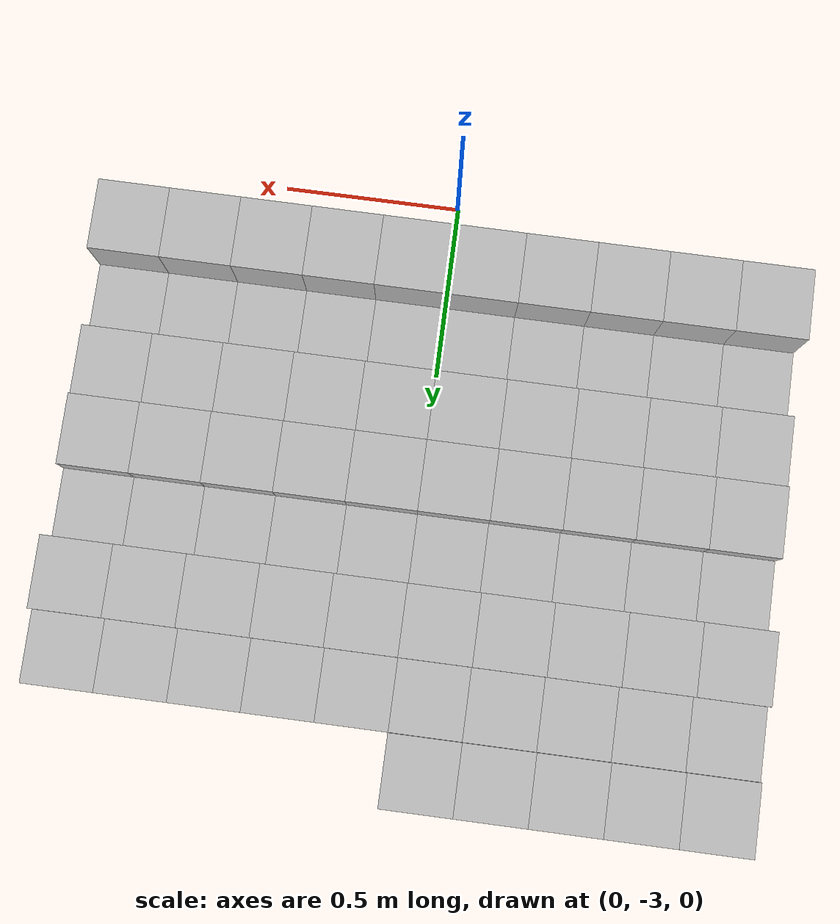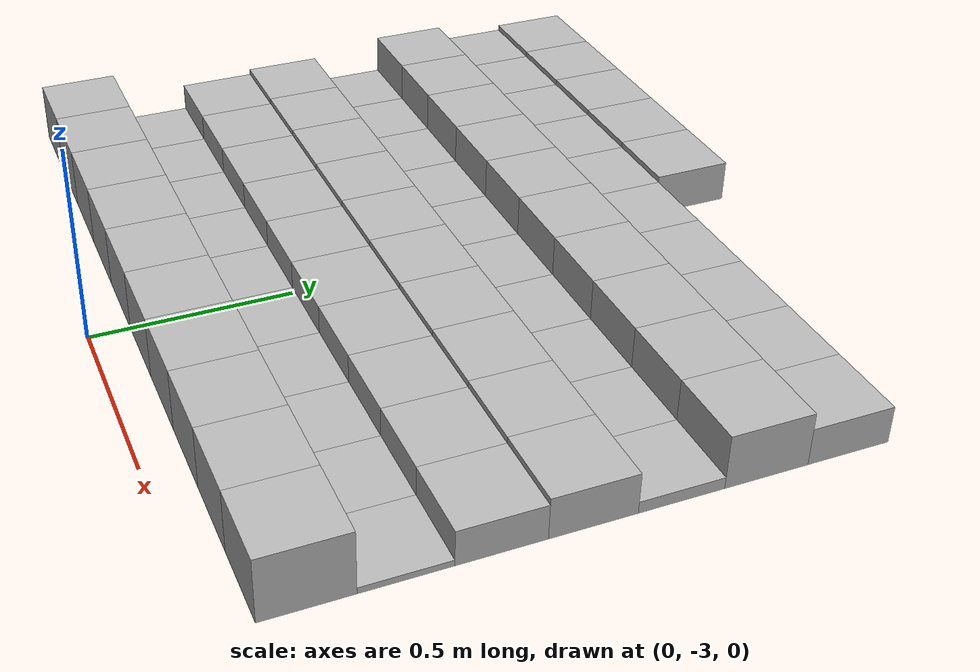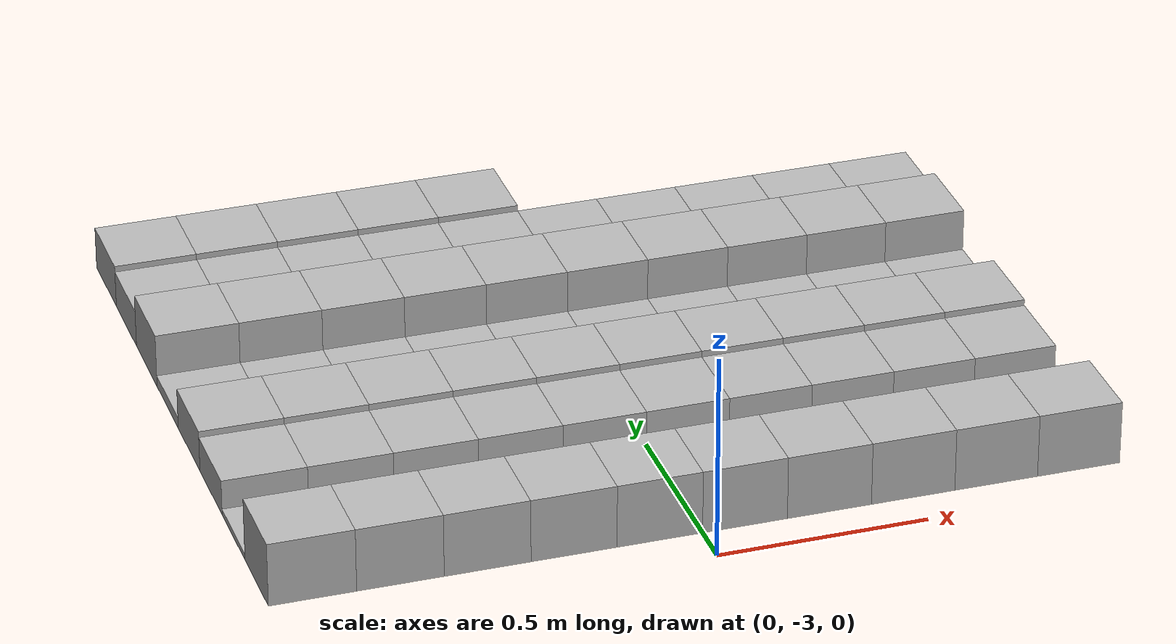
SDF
<sdf version="1.6">
 <model name="Terrain">
  <static>true</static>
  <link name="box_7_0">
   <pose>-0.9 -1.4 0.0542363194159 0 0 0</pose>
   <inertial>
    <mass>1.0</mass>
    <inertia><ixx>0.0</ixx><ixy>0.0</ixy><ixz>0.0</ixz><iyy>0.0</iyy><iyz>0.0</iyz><izz>0.0</izz></inertia>
   </inertial>
   <collision name="collision"><geometry><box><size>0.2 0.2 0.108472638832</size></box></geometry></collision>
   <visual name="visual"><geometry><box><size>0.2 0.2 0.108472638832</size></box></geometry></visual>
  </link>
  <link name="box_7_1">
   <pose>-0.7 -1.4 0.0542363194159 0 0 0</pose>
   <inertial>
    <mass>1.0</mass>
    <inertia><ixx>0.0</ixx><ixy>0.0</ixy><ixz>0.0</ixz><iyy>0.0</iyy><iyz>0.0</iyz><izz>0.0</izz></inertia>
   </inertial>
   <collision name="collision"><geometry><box><size>0.2 0.2 0.108472638832</size></box></geometry></collision>
   <visual name="visual"><geometry><box><size>0.2 0.2 0.108472638832</size></box></geometry></visual>
  </link>
  <link name="box_7_2">
   <pose>-0.5 -1.4 0.0542363194159 0 0 0</pose>
   <inertial>
    <mass>1.0</mass>
    <inertia><ixx>0.0</ixx><ixy>0.0</ixy><ixz>0.0</ixz><iyy>0.0</iyy><iyz>0.0</iyz><izz>0.0</izz></inertia>
   </inertial>
   <collision name="collision"><geometry><box><size>0.2 0.2 0.108472638832</size></box></geometry></collision>
   <visual name="visual"><geometry><box><size>0.2 0.2 0.108472638832</size></box></geometry></visual>
  </link>
  <link name="box_7_3">
   <pose>-0.3 -1.4 0.0542363194159 0 0 0</pose>
   <inertial>
    <mass>1.0</mass>
    <inertia><ixx>0.0</ixx><ixy>0.0</ixy><ixz>0.0</ixz><iyy>0.0</iyy><iyz>0.0</iyz><izz>0.0</izz></inertia>
   </inertial>
   <collision name="collision"><geometry><box><size>0.2 0.2 0.108472638832</size></box></geometry></collision>
   <visual name="visual"><geometry><box><size>0.2 0.2 0.108472638832</size></box></geometry></visual>
  </link>
  <link name="box_7_4">
   <pose>-0.1 -1.4 0.0542363194159 0 0 0</pose>
   <inertial>
    <mass>1.0</mass>
    <inertia><ixx>0.0</ixx><ixy>0.0</ixy><ixz>0.0</ixz><iyy>0.0</iyy><iyz>0.0</iyz><izz>0.0</izz></inertia>
   </inertial>
   <collision name="collision"><geometry><box><size>0.2 0.2 0.108472638832</size></box></geometry></collision>
   <visual name="visual"><geometry><box><size>0.2 0.2 0.108472638832</size></box></geometry></visual>
  </link>
  <link name="box_8_0">
   <pose>-0.9 -1.6 0.0467953595649 0 0 0</pose>
   <inertial>
    <mass>1.0</mass>
    <inertia><ixx>0.0</ixx><ixy>0.0</ixy><ixz>0.0</ixz><iyy>0.0</iyy><iyz>0.0</iyz><izz>0.0</izz></inertia>
   </inertial>
   <collision name="collision"><geometry><box><size>0.2 0.2 0.0935907191298</size></box></geometry></collision>
   <visual name="visual"><geometry><box><size>0.2 0.2 0.0935907191298</size></box></geometry></visual>
  </link>
  <link name="box_8_1">
   <pose>-0.7 -1.6 0.0467953595649 0 0 0</pose>
   <inertial>
    <mass>1.0</mass>
    <inertia><ixx>0.0</ixx><ixy>0.0</ixy><ixz>0.0</ixz><iyy>0.0</iyy><iyz>0.0</iyz><izz>0.0</izz></inertia>
   </inertial>
   <collision name="collision"><geometry><box><size>0.2 0.2 0.0935907191298</size></box></geometry></collision>
   <visual name="visual"><geometry><box><size>0.2 0.2 0.0935907191298</size></box></geometry></visual>
  </link>
  <link name="box_8_2">
   <pose>-0.5 -1.6 0.0467953595649 0 0 0</pose>
   <inertial>
    <mass>1.0</mass>
    <inertia><ixx>0.0</ixx><ixy>0.0</ixy><ixz>0.0</ixz><iyy>0.0</iyy><iyz>0.0</iyz><izz>0.0</izz></inertia>
   </inertial>
   <collision name="collision"><geometry><box><size>0.2 0.2 0.0935907191298</size></box></geometry></collision>
   <visual name="visual"><geometry><box><size>0.2 0.2 0.0935907191298</size></box></geometry></visual>
  </link>
  <link name="box_8_3">
   <pose>-0.3 -1.6 0.0467953595649 0 0 0</pose>
   <inertial>
    <mass>1.0</mass>
    <inertia><ixx>0.0</ixx><ixy>0.0</ixy><ixz>0.0</ixz><iyy>0.0</iyy><iyz>0.0</iyz><izz>0.0</izz></inertia>
   </inertial>
   <collision name="collision"><geometry><box><size>0.2 0.2 0.0935907191298</size></box></geometry></collision>
   <visual name="visual"><geometry><box><size>0.2 0.2 0.0935907191298</size></box></geometry></visual>
  </link>
  <link name="box_8_4">
   <pose>-0.1 -1.6 0.0467953595649 0 0 0</pose>
   <inertial>
    <mass>1.0</mass>
    <inertia><ixx>0.0</ixx><ixy>0.0</ixy><ixz>0.0</ixz><iyy>0.0</iyy><iyz>0.0</iyz><izz>0.0</izz></inertia>
   </inertial>
   <collision name="collision"><geometry><box><size>0.2 0.2 0.0935907191298</size></box></geometry></collision>
   <visual name="visual"><geometry><box><size>0.2 0.2 0.0935907191298</size></box></geometry></visual>
  </link>
  <link name="box_8_5">
   <pose>0.1 -1.6 0.0467953595649 0 0 0</pose>
   <inertial>
    <mass>1.0</mass>
    <inertia><ixx>0.0</ixx><ixy>0.0</ixy><ixz>0.0</ixz><iyy>0.0</iyy><iyz>0.0</iyz><izz>0.0</izz></inertia>
   </inertial>
   <collision name="collision"><geometry><box><size>0.2 0.2 0.0935907191298</size></box></geometry></collision>
   <visual name="visual"><geometry><box><size>0.2 0.2 0.0935907191298</size></box></geometry></visual>
  </link>
  <link name="box_8_6">
   <pose>0.3 -1.6 0.0467953595649 0 0 0</pose>
   <inertial>
    <mass>1.0</mass>
    <inertia><ixx>0.0</ixx><ixy>0.0</ixy><ixz>0.0</ixz><iyy>0.0</iyy><iyz>0.0</iyz><izz>0.0</izz></inertia>
   </inertial>
   <collision name="collision"><geometry><box><size>0.2 0.2 0.0935907191298</size></box></geometry></collision>
   <visual name="visual"><geometry><box><size>0.2 0.2 0.0935907191298</size></box></geometry></visual>
  </link>
  <link name="box_8_7">
   <pose>0.5 -1.6 0.0467953595649 0 0 0</pose>
   <inertial>
    <mass>1.0</mass>
    <inertia><ixx>0.0</ixx><ixy>0.0</ixy><ixz>0.0</ixz><iyy>0.0</iyy><iyz>0.0</iyz><izz>0.0</izz></inertia>
   </inertial>
   <collision name="collision"><geometry><box><size>0.2 0.2 0.0935907191298</size></box></geometry></collision>
   <visual name="visual"><geometry><box><size>0.2 0.2 0.0935907191298</size></box></geometry></visual>
  </link>
  <link name="box_8_8">
   <pose>0.7 -1.6 0.0467953595649 0 0 0</pose>
   <inertial>
    <mass>1.0</mass>
    <inertia><ixx>0.0</ixx><ixy>0.0</ixy><ixz>0.0</ixz><iyy>0.0</iyy><iyz>0.0</iyz><izz>0.0</izz></inertia>
   </inertial>
   <collision name="collision"><geometry><box><size>0.2 0.2 0.0935907191298</size></box></geometry></collision>
   <visual name="visual"><geometry><box><size>0.2 0.2 0.0935907191298</size></box></geometry></visual>
  </link>
  <link name="box_8_9">
   <pose>0.9 -1.6 0.0467953595649 0 0 0</pose>
   <inertial>
    <mass>1.0</mass>
    <inertia><ixx>0.0</ixx><ixy>0.0</ixy><ixz>0.0</ixz><iyy>0.0</iyy><iyz>0.0</iyz><izz>0.0</izz></inertia>
   </inertial>
   <collision name="collision"><geometry><box><size>0.2 0.2 0.0935907191298</size></box></geometry></collision>
   <visual name="visual"><geometry><box><size>0.2 0.2 0.0935907191298</size></box></geometry></visual>
  </link>
  <link name="box_9_0">
   <pose>-0.9 -1.8 0.0676945440921 0 0 0</pose>
   <inertial>
    <mass>1.0</mass>
    <inertia><ixx>0.0</ixx><ixy>0.0</ixy><ixz>0.0</ixz><iyy>0.0</iyy><iyz>0.0</iyz><izz>0.0</izz></inertia>
   </inertial>
   <collision name="collision"><geometry><box><size>0.2 0.2 0.135389088184</size></box></geometry></collision>
   <visual name="visual"><geometry><box><size>0.2 0.2 0.135389088184</size></box></geometry></visual>
  </link>
  <link name="box_9_1">
   <pose>-0.7 -1.8 0.0676945440921 0 0 0</pose>
   <inertial>
    <mass>1.0</mass>
    <inertia><ixx>0.0</ixx><ixy>0.0</ixy><ixz>0.0</ixz><iyy>0.0</iyy><iyz>0.0</iyz><izz>0.0</izz></inertia>
   </inertial>
   <collision name="collision"><geometry><box><size>0.2 0.2 0.135389088184</size></box></geometry></collision>
   <visual name="visual"><geometry><box><size>0.2 0.2 0.135389088184</size></box></geometry></visual>
  </link>
  <link name="box_9_2">
   <pose>-0.5 -1.8 0.0676945440921 0 0 0</pose>
   <inertial>
    <mass>1.0</mass>
    <inertia><ixx>0.0</ixx><ixy>0.0</ixy><ixz>0.0</ixz><iyy>0.0</iyy><iyz>0.0</iyz><izz>0.0</izz></inertia>
   </inertial>
   <collision name="collision"><geometry><box><size>0.2 0.2 0.135389088184</size></box></geometry></collision>
   <visual name="visual"><geometry><box><size>0.2 0.2 0.135389088184</size></box></geometry></visual>
  </link>
  <link name="box_9_3">
   <pose>-0.3 -1.8 0.0676945440921 0 0 0</pose>
   <inertial>
    <mass>1.0</mass>
    <inertia><ixx>0.0</ixx><ixy>0.0</ixy><ixz>0.0</ixz><iyy>0.0</iyy><iyz>0.0</iyz><izz>0.0</izz></inertia>
   </inertial>
   <collision name="collision"><geometry><box><size>0.2 0.2 0.135389088184</size></box></geometry></collision>
   <visual name="visual"><geometry><box><size>0.2 0.2 0.135389088184</size></box></geometry></visual>
  </link>
  <link name="box_9_4">
   <pose>-0.1 -1.8 0.0676945440921 0 0 0</pose>
   <inertial>
    <mass>1.0</mass>
    <inertia><ixx>0.0</ixx><ixy>0.0</ixy><ixz>0.0</ixz><iyy>0.0</iyy><iyz>0.0</iyz><izz>0.0</izz></inertia>
   </inertial>
   <collision name="collision"><geometry><box><size>0.2 0.2 0.135389088184</size></box></geometry></collision>
   <visual name="visual"><geometry><box><size>0.2 0.2 0.135389088184</size></box></geometry></visual>
  </link>
  <link name="box_9_5">
   <pose>0.1 -1.8 0.0676945440921 0 0 0</pose>
   <inertial>
    <mass>1.0</mass>
    <inertia><ixx>0.0</ixx><ixy>0.0</ixy><ixz>0.0</ixz><iyy>0.0</iyy><iyz>0.0</iyz><izz>0.0</izz></inertia>
   </inertial>
   <collision name="collision"><geometry><box><size>0.2 0.2 0.135389088184</size></box></geometry></collision>
   <visual name="visual"><geometry><box><size>0.2 0.2 0.135389088184</size></box></geometry></visual>
  </link>
  <link name="box_9_6">
   <pose>0.3 -1.8 0.0676945440921 0 0 0</pose>
   <inertial>
    <mass>1.0</mass>
    <inertia><ixx>0.0</ixx><ixy>0.0</ixy><ixz>0.0</ixz><iyy>0.0</iyy><iyz>0.0</iyz><izz>0.0</izz></inertia>
   </inertial>
   <collision name="collision"><geometry><box><size>0.2 0.2 0.135389088184</size></box></geometry></collision>
   <visual name="visual"><geometry><box><size>0.2 0.2 0.135389088184</size></box></geometry></visual>
  </link>
  <link name="box_9_7">
   <pose>0.5 -1.8 0.0676945440921 0 0 0</pose>
   <inertial>
    <mass>1.0</mass>
    <inertia><ixx>0.0</ixx><ixy>0.0</ixy><ixz>0.0</ixz><iyy>0.0</iyy><iyz>0.0</iyz><izz>0.0</izz></inertia>
   </inertial>
   <collision name="collision"><geometry><box><size>0.2 0.2 0.135389088184</size></box></geometry></collision>
   <visual name="visual"><geometry><box><size>0.2 0.2 0.135389088184</size></box></geometry></visual>
  </link>
  <link name="box_9_8">
   <pose>0.7 -1.8 0.0676945440921 0 0 0</pose>
   <inertial>
    <mass>1.0</mass>
    <inertia><ixx>0.0</ixx><ixy>0.0</ixy><ixz>0.0</ixz><iyy>0.0</iyy><iyz>0.0</iyz><izz>0.0</izz></inertia>
   </inertial>
   <collision name="collision"><geometry><box><size>0.2 0.2 0.135389088184</size></box></geometry></collision>
   <visual name="visual"><geometry><box><size>0.2 0.2 0.135389088184</size></box></geometry></visual>
  </link>
  <link name="box_9_9">
   <pose>0.9 -1.8 0.0676945440921 0 0 0</pose>
   <inertial>
    <mass>1.0</mass>
    <inertia><ixx>0.0</ixx><ixy>0.0</ixy><ixz>0.0</ixz><iyy>0.0</iyy><iyz>0.0</iyz><izz>0.0</izz></inertia>
   </inertial>
   <collision name="collision"><geometry><box><size>0.2 0.2 0.135389088184</size></box></geometry></collision>
   <visual name="visual"><geometry><box><size>0.2 0.2 0.135389088184</size></box></geometry></visual>
  </link>
  <link name="box_10_0">
   <pose>-0.9 -2.0 0.0147372057826 0 0 0</pose>
   <inertial>
    <mass>1.0</mass>
    <inertia><ixx>0.0</ixx><ixy>0.0</ixy><ixz>0.0</ixz><iyy>0.0</iyy><iyz>0.0</iyz><izz>0.0</izz></inertia>
   </inertial>
   <collision name="collision"><geometry><box><size>0.2 0.2 0.0294744115652</size></box></geometry></collision>
   <visual name="visual"><geometry><box><size>0.2 0.2 0.0294744115652</size></box></geometry></visual>
  </link>
  <link name="box_10_1">
   <pose>-0.7 -2.0 0.0147372057826 0 0 0</pose>
   <inertial>
    <mass>1.0</mass>
    <inertia><ixx>0.0</ixx><ixy>0.0</ixy><ixz>0.0</ixz><iyy>0.0</iyy><iyz>0.0</iyz><izz>0.0</izz></inertia>
   </inertial>
   <collision name="collision"><geometry><box><size>0.2 0.2 0.0294744115652</size></box></geometry></collision>
   <visual name="visual"><geometry><box><size>0.2 0.2 0.0294744115652</size></box></geometry></visual>
  </link>
  <link name="box_10_2">
   <pose>-0.5 -2.0 0.0147372057826 0 0 0</pose>
   <inertial>
    <mass>1.0</mass>
    <inertia><ixx>0.0</ixx><ixy>0.0</ixy><ixz>0.0</ixz><iyy>0.0</iyy><iyz>0.0</iyz><izz>0.0</izz></inertia>
   </inertial>
   <collision name="collision"><geometry><box><size>0.2 0.2 0.0294744115652</size></box></geometry></collision>
   <visual name="visual"><geometry><box><size>0.2 0.2 0.0294744115652</size></box></geometry></visual>
  </link>
  <link name="box_10_3">
   <pose>-0.3 -2.0 0.0147372057826 0 0 0</pose>
   <inertial>
    <mass>1.0</mass>
    <inertia><ixx>0.0</ixx><ixy>0.0</ixy><ixz>0.0</ixz><iyy>0.0</iyy><iyz>0.0</iyz><izz>0.0</izz></inertia>
   </inertial>
   <collision name="collision"><geometry><box><size>0.2 0.2 0.0294744115652</size></box></geometry></collision>
   <visual name="visual"><geometry><box><size>0.2 0.2 0.0294744115652</size></box></geometry></visual>
  </link>
  <link name="box_10_4">
   <pose>-0.1 -2.0 0.0147372057826 0 0 0</pose>
   <inertial>
    <mass>1.0</mass>
    <inertia><ixx>0.0</ixx><ixy>0.0</ixy><ixz>0.0</ixz><iyy>0.0</iyy><iyz>0.0</iyz><izz>0.0</izz></inertia>
   </inertial>
   <collision name="collision"><geometry><box><size>0.2 0.2 0.0294744115652</size></box></geometry></collision>
   <visual name="visual"><geometry><box><size>0.2 0.2 0.0294744115652</size></box></geometry></visual>
  </link>
  <link name="box_10_5">
   <pose>0.1 -2.0 0.0147372057826 0 0 0</pose>
   <inertial>
    <mass>1.0</mass>
    <inertia><ixx>0.0</ixx><ixy>0.0</ixy><ixz>0.0</ixz><iyy>0.0</iyy><iyz>0.0</iyz><izz>0.0</izz></inertia>
   </inertial>
   <collision name="collision"><geometry><box><size>0.2 0.2 0.0294744115652</size></box></geometry></collision>
   <visual name="visual"><geometry><box><size>0.2 0.2 0.0294744115652</size></box></geometry></visual>
  </link>
  <link name="box_10_6">
   <pose>0.3 -2.0 0.0147372057826 0 0 0</pose>
   <inertial>
    <mass>1.0</mass>
    <inertia><ixx>0.0</ixx><ixy>0.0</ixy><ixz>0.0</ixz><iyy>0.0</iyy><iyz>0.0</iyz><izz>0.0</izz></inertia>
   </inertial>
   <collision name="collision"><geometry><box><size>0.2 0.2 0.0294744115652</size></box></geometry></collision>
   <visual name="visual"><geometry><box><size>0.2 0.2 0.0294744115652</size></box></geometry></visual>
  </link>
  <link name="box_10_7">
   <pose>0.5 -2.0 0.0147372057826 0 0 0</pose>
   <inertial>
    <mass>1.0</mass>
    <inertia><ixx>0.0</ixx><ixy>0.0</ixy><ixz>0.0</ixz><iyy>0.0</iyy><iyz>0.0</iyz><izz>0.0</izz></inertia>
   </inertial>
   <collision name="collision"><geometry><box><size>0.2 0.2 0.0294744115652</size></box></geometry></collision>
   <visual name="visual"><geometry><box><size>0.2 0.2 0.0294744115652</size></box></geometry></visual>
  </link>
  <link name="box_10_8">
   <pose>0.7 -2.0 0.0147372057826 0 0 0</pose>
   <inertial>
    <mass>1.0</mass>
    <inertia><ixx>0.0</ixx><ixy>0.0</ixy><ixz>0.0</ixz><iyy>0.0</iyy><iyz>0.0</iyz><izz>0.0</izz></inertia>
   </inertial>
   <collision name="collision"><geometry><box><size>0.2 0.2 0.0294744115652</size></box></geometry></collision>
   <visual name="visual"><geometry><box><size>0.2 0.2 0.0294744115652</size></box></geometry></visual>
  </link>
  <link name="box_10_9">
   <pose>0.9 -2.0 0.0147372057826 0 0 0</pose>
   <inertial>
    <mass>1.0</mass>
    <inertia><ixx>0.0</ixx><ixy>0.0</ixy><ixz>0.0</ixz><iyy>0.0</iyy><iyz>0.0</iyz><izz>0.0</izz></inertia>
   </inertial>
   <collision name="collision"><geometry><box><size>0.2 0.2 0.0294744115652</size></box></geometry></collision>
   <visual name="visual"><geometry><box><size>0.2 0.2 0.0294744115652</size></box></geometry></visual>
  </link>
  <link name="box_11_0">
   <pose>-0.9 -2.2 0.0519534924547 0 0 0</pose>
   <inertial>
    <mass>1.0</mass>
    <inertia><ixx>0.0</ixx><ixy>0.0</ixy><ixz>0.0</ixz><iyy>0.0</iyy><iyz>0.0</iyz><izz>0.0</izz></inertia>
   </inertial>
   <collision name="collision"><geometry><box><size>0.2 0.2 0.103906984909</size></box></geometry></collision>
   <visual name="visual"><geometry><box><size>0.2 0.2 0.103906984909</size></box></geometry></visual>
  </link>
  <link name="box_11_1">
   <pose>-0.7 -2.2 0.0519534924547 0 0 0</pose>
   <inertial>
    <mass>1.0</mass>
    <inertia><ixx>0.0</ixx><ixy>0.0</ixy><ixz>0.0</ixz><iyy>0.0</iyy><iyz>0.0</iyz><izz>0.0</izz></inertia>
   </inertial>
   <collision name="collision"><geometry><box><size>0.2 0.2 0.103906984909</size></box></geometry></collision>
   <visual name="visual"><geometry><box><size>0.2 0.2 0.103906984909</size></box></geometry></visual>
  </link>
  <link name="box_11_2">
   <pose>-0.5 -2.2 0.0519534924547 0 0 0</pose>
   <inertial>
    <mass>1.0</mass>
    <inertia><ixx>0.0</ixx><ixy>0.0</ixy><ixz>0.0</ixz><iyy>0.0</iyy><iyz>0.0</iyz><izz>0.0</izz></inertia>
   </inertial>
   <collision name="collision"><geometry><box><size>0.2 0.2 0.103906984909</size></box></geometry></collision>
   <visual name="visual"><geometry><box><size>0.2 0.2 0.103906984909</size></box></geometry></visual>
  </link>
  <link name="box_11_3">
   <pose>-0.3 -2.2 0.0519534924547 0 0 0</pose>
   <inertial>
    <mass>1.0</mass>
    <inertia><ixx>0.0</ixx><ixy>0.0</ixy><ixz>0.0</ixz><iyy>0.0</iyy><iyz>0.0</iyz><izz>0.0</izz></inertia>
   </inertial>
   <collision name="collision"><geometry><box><size>0.2 0.2 0.103906984909</size></box></geometry></collision>
   <visual name="visual"><geometry><box><size>0.2 0.2 0.103906984909</size></box></geometry></visual>
  </link>
  <link name="box_11_4">
   <pose>-0.1 -2.2 0.0519534924547 0 0 0</pose>
   <inertial>
    <mass>1.0</mass>
    <inertia><ixx>0.0</ixx><ixy>0.0</ixy><ixz>0.0</ixz><iyy>0.0</iyy><iyz>0.0</iyz><izz>0.0</izz></inertia>
   </inertial>
   <collision name="collision"><geometry><box><size>0.2 0.2 0.103906984909</size></box></geometry></collision>
   <visual name="visual"><geometry><box><size>0.2 0.2 0.103906984909</size></box></geometry></visual>
  </link>
  <link name="box_11_5">
   <pose>0.1 -2.2 0.0519534924547 0 0 0</pose>
   <inertial>
    <mass>1.0</mass>
    <inertia><ixx>0.0</ixx><ixy>0.0</ixy><ixz>0.0</ixz><iyy>0.0</iyy><iyz>0.0</iyz><izz>0.0</izz></inertia>
   </inertial>
   <collision name="collision"><geometry><box><size>0.2 0.2 0.103906984909</size></box></geometry></collision>
   <visual name="visual"><geometry><box><size>0.2 0.2 0.103906984909</size></box></geometry></visual>
  </link>
  <link name="box_11_6">
   <pose>0.3 -2.2 0.0519534924547 0 0 0</pose>
   <inertial>
    <mass>1.0</mass>
    <inertia><ixx>0.0</ixx><ixy>0.0</ixy><ixz>0.0</ixz><iyy>0.0</iyy><iyz>0.0</iyz><izz>0.0</izz></inertia>
   </inertial>
   <collision name="collision"><geometry><box><size>0.2 0.2 0.103906984909</size></box></geometry></collision>
   <visual name="visual"><geometry><box><size>0.2 0.2 0.103906984909</size></box></geometry></visual>
  </link>
  <link name="box_11_7">
   <pose>0.5 -2.2 0.0519534924547 0 0 0</pose>
   <inertial>
    <mass>1.0</mass>
    <inertia><ixx>0.0</ixx><ixy>0.0</ixy><ixz>0.0</ixz><iyy>0.0</iyy><iyz>0.0</iyz><izz>0.0</izz></inertia>
   </inertial>
   <collision name="collision"><geometry><box><size>0.2 0.2 0.103906984909</size></box></geometry></collision>
   <visual name="visual"><geometry><box><size>0.2 0.2 0.103906984909</size></box></geometry></visual>
  </link>
  <link name="box_11_8">
   <pose>0.7 -2.2 0.0519534924547 0 0 0</pose>
   <inertial>
    <mass>1.0</mass>
    <inertia><ixx>0.0</ixx><ixy>0.0</ixy><ixz>0.0</ixz><iyy>0.0</iyy><iyz>0.0</iyz><izz>0.0</izz></inertia>
   </inertial>
   <collision name="collision"><geometry><box><size>0.2 0.2 0.103906984909</size></box></geometry></collision>
   <visual name="visual"><geometry><box><size>0.2 0.2 0.103906984909</size></box></geometry></visual>
  </link>
  <link name="box_11_9">
   <pose>0.9 -2.2 0.0519534924547 0 0 0</pose>
   <inertial>
    <mass>1.0</mass>
    <inertia><ixx>0.0</ixx><ixy>0.0</ixy><ixz>0.0</ixz><iyy>0.0</iyy><iyz>0.0</iyz><izz>0.0</izz></inertia>
   </inertial>
   <collision name="collision"><geometry><box><size>0.2 0.2 0.103906984909</size></box></geometry></collision>
   <visual name="visual"><geometry><box><size>0.2 0.2 0.103906984909</size></box></geometry></visual>
  </link>
  <link name="box_12_0">
   <pose>-0.9 -2.4 0.0442587101524 0 0 0</pose>
   <inertial>
    <mass>1.0</mass>
    <inertia><ixx>0.0</ixx><ixy>0.0</ixy><ixz>0.0</ixz><iyy>0.0</iyy><iyz>0.0</iyz><izz>0.0</izz></inertia>
   </inertial>
   <collision name="collision"><geometry><box><size>0.2 0.2 0.0885174203048</size></box></geometry></collision>
   <visual name="visual"><geometry><box><size>0.2 0.2 0.0885174203048</size></box></geometry></visual>
  </link>
  <link name="box_12_1">
   <pose>-0.7 -2.4 0.0442587101524 0 0 0</pose>
   <inertial>
    <mass>1.0</mass>
    <inertia><ixx>0.0</ixx><ixy>0.0</ixy><ixz>0.0</ixz><iyy>0.0</iyy><iyz>0.0</iyz><izz>0.0</izz></inertia>
   </inertial>
   <collision name="collision"><geometry><box><size>0.2 0.2 0.0885174203048</size></box></geometry></collision>
   <visual name="visual"><geometry><box><size>0.2 0.2 0.0885174203048</size></box></geometry></visual>
  </link>
  <link name="box_12_2">
   <pose>-0.5 -2.4 0.0442587101524 0 0 0</pose>
   <inertial>
    <mass>1.0</mass>
    <inertia><ixx>0.0</ixx><ixy>0.0</ixy><ixz>0.0</ixz><iyy>0.0</iyy><iyz>0.0</iyz><izz>0.0</izz></inertia>
   </inertial>
   <collision name="collision"><geometry><box><size>0.2 0.2 0.0885174203048</size></box></geometry></collision>
   <visual name="visual"><geometry><box><size>0.2 0.2 0.0885174203048</size></box></geometry></visual>
  </link>
  <link name="box_12_3">
   <pose>-0.3 -2.4 0.0442587101524 0 0 0</pose>
   <inertial>
    <mass>1.0</mass>
    <inertia><ixx>0.0</ixx><ixy>0.0</ixy><ixz>0.0</ixz><iyy>0.0</iyy><iyz>0.0</iyz><izz>0.0</izz></inertia>
   </inertial>
   <collision name="collision"><geometry><box><size>0.2 0.2 0.0885174203048</size></box></geometry></collision>
   <visual name="visual"><geometry><box><size>0.2 0.2 0.0885174203048</size></box></geometry></visual>
  </link>
  <link name="box_12_4">
   <pose>-0.1 -2.4 0.0442587101524 0 0 0</pose>
   <inertial>
    <mass>1.0</mass>
    <inertia><ixx>0.0</ixx><ixy>0.0</ixy><ixz>0.0</ixz><iyy>0.0</iyy><iyz>0.0</iyz><izz>0.0</izz></inertia>
   </inertial>
   <collision name="collision"><geometry><box><size>0.2 0.2 0.0885174203048</size></box></geometry></collision>
   <visual name="visual"><geometry><box><size>0.2 0.2 0.0885174203048</size></box></geometry></visual>
  </link>
  <link name="box_12_5">
   <pose>0.1 -2.4 0.0442587101524 0 0 0</pose>
   <inertial>
    <mass>1.0</mass>
    <inertia><ixx>0.0</ixx><ixy>0.0</ixy><ixz>0.0</ixz><iyy>0.0</iyy><iyz>0.0</iyz><izz>0.0</izz></inertia>
   </inertial>
   <collision name="collision"><geometry><box><size>0.2 0.2 0.0885174203048</size></box></geometry></collision>
   <visual name="visual"><geometry><box><size>0.2 0.2 0.0885174203048</size></box></geometry></visual>
  </link>
  <link name="box_12_6">
   <pose>0.3 -2.4 0.0442587101524 0 0 0</pose>
   <inertial>
    <mass>1.0</mass>
    <inertia><ixx>0.0</ixx><ixy>0.0</ixy><ixz>0.0</ixz><iyy>0.0</iyy><iyz>0.0</iyz><izz>0.0</izz></inertia>
   </inertial>
   <collision name="collision"><geometry><box><size>0.2 0.2 0.0885174203048</size></box></geometry></collision>
   <visual name="visual"><geometry><box><size>0.2 0.2 0.0885174203048</size></box></geometry></visual>
  </link>
  <link name="box_12_7">
   <pose>0.5 -2.4 0.0442587101524 0 0 0</pose>
   <inertial>
    <mass>1.0</mass>
    <inertia><ixx>0.0</ixx><ixy>0.0</ixy><ixz>0.0</ixz><iyy>0.0</iyy><iyz>0.0</iyz><izz>0.0</izz></inertia>
   </inertial>
   <collision name="collision"><geometry><box><size>0.2 0.2 0.0885174203048</size></box></geometry></collision>
   <visual name="visual"><geometry><box><size>0.2 0.2 0.0885174203048</size></box></geometry></visual>
  </link>
  <link name="box_12_8">
   <pose>0.7 -2.4 0.0442587101524 0 0 0</pose>
   <inertial>
    <mass>1.0</mass>
    <inertia><ixx>0.0</ixx><ixy>0.0</ixy><ixz>0.0</ixz><iyy>0.0</iyy><iyz>0.0</iyz><izz>0.0</izz></inertia>
   </inertial>
   <collision name="collision"><geometry><box><size>0.2 0.2 0.0885174203048</size></box></geometry></collision>
   <visual name="visual"><geometry><box><size>0.2 0.2 0.0885174203048</size></box></geometry></visual>
  </link>
  <link name="box_12_9">
   <pose>0.9 -2.4 0.0442587101524 0 0 0</pose>
   <inertial>
    <mass>1.0</mass>
    <inertia><ixx>0.0</ixx><ixy>0.0</ixy><ixz>0.0</ixz><iyy>0.0</iyy><iyz>0.0</iyz><izz>0.0</izz></inertia>
   </inertial>
   <collision name="collision"><geometry><box><size>0.2 0.2 0.0885174203048</size></box></geometry></collision>
   <visual name="visual"><geometry><box><size>0.2 0.2 0.0885174203048</size></box></geometry></visual>
  </link>
  <link name="box_13_0">
   <pose>-0.9 -2.6 0.00766750851225 0 0 0</pose>
   <inertial>
    <mass>1.0</mass>
    <inertia><ixx>0.0</ixx><ixy>0.0</ixy><ixz>0.0</ixz><iyy>0.0</iyy><iyz>0.0</iyz><izz>0.0</izz></inertia>
   </inertial>
   <collision name="collision"><geometry><box><size>0.2 0.2 0.0153350170245</size></box></geometry></collision>
   <visual name="visual"><geometry><box><size>0.2 0.2 0.0153350170245</size></box></geometry></visual>
  </link>
  <link name="box_13_1">
   <pose>-0.7 -2.6 0.00766750851225 0 0 0</pose>
   <inertial>
    <mass>1.0</mass>
    <inertia><ixx>0.0</ixx><ixy>0.0</ixy><ixz>0.0</ixz><iyy>0.0</iyy><iyz>0.0</iyz><izz>0.0</izz></inertia>
   </inertial>
   <collision name="collision"><geometry><box><size>0.2 0.2 0.0153350170245</size></box></geometry></collision>
   <visual name="visual"><geometry><box><size>0.2 0.2 0.0153350170245</size></box></geometry></visual>
  </link>
  <link name="box_13_2">
   <pose>-0.5 -2.6 0.00766750851225 0 0 0</pose>
   <inertial>
    <mass>1.0</mass>
    <inertia><ixx>0.0</ixx><ixy>0.0</ixy><ixz>0.0</ixz><iyy>0.0</iyy><iyz>0.0</iyz><izz>0.0</izz></inertia>
   </inertial>
   <collision name="collision"><geometry><box><size>0.2 0.2 0.0153350170245</size></box></geometry></collision>
   <visual name="visual"><geometry><box><size>0.2 0.2 0.0153350170245</size></box></geometry></visual>
  </link>
  <link name="box_13_3">
   <pose>-0.3 -2.6 0.00766750851225 0 0 0</pose>
   <inertial>
    <mass>1.0</mass>
    <inertia><ixx>0.0</ixx><ixy>0.0</ixy><ixz>0.0</ixz><iyy>0.0</iyy><iyz>0.0</iyz><izz>0.0</izz></inertia>
   </inertial>
   <collision name="collision"><geometry><box><size>0.2 0.2 0.0153350170245</size></box></geometry></collision>
   <visual name="visual"><geometry><box><size>0.2 0.2 0.0153350170245</size></box></geometry></visual>
  </link>
  <link name="box_13_4">
   <pose>-0.1 -2.6 0.00766750851225 0 0 0</pose>
   <inertial>
    <mass>1.0</mass>
    <inertia><ixx>0.0</ixx><ixy>0.0</ixy><ixz>0.0</ixz><iyy>0.0</iyy><iyz>0.0</iyz><izz>0.0</izz></inertia>
   </inertial>
   <collision name="collision"><geometry><box><size>0.2 0.2 0.0153350170245</size></box></geometry></collision>
   <visual name="visual"><geometry><box><size>0.2 0.2 0.0153350170245</size></box></geometry></visual>
  </link>
  <link name="box_13_5">
   <pose>0.1 -2.6 0.00766750851225 0 0 0</pose>
   <inertial>
    <mass>1.0</mass>
    <inertia><ixx>0.0</ixx><ixy>0.0</ixy><ixz>0.0</ixz><iyy>0.0</iyy><iyz>0.0</iyz><izz>0.0</izz></inertia>
   </inertial>
   <collision name="collision"><geometry><box><size>0.2 0.2 0.0153350170245</size></box></geometry></collision>
   <visual name="visual"><geometry><box><size>0.2 0.2 0.0153350170245</size></box></geometry></visual>
  </link>
  <link name="box_13_6">
   <pose>0.3 -2.6 0.00766750851225 0 0 0</pose>
   <inertial>
    <mass>1.0</mass>
    <inertia><ixx>0.0</ixx><ixy>0.0</ixy><ixz>0.0</ixz><iyy>0.0</iyy><iyz>0.0</iyz><izz>0.0</izz></inertia>
   </inertial>
   <collision name="collision"><geometry><box><size>0.2 0.2 0.0153350170245</size></box></geometry></collision>
   <visual name="visual"><geometry><box><size>0.2 0.2 0.0153350170245</size></box></geometry></visual>
  </link>
  <link name="box_13_7">
   <pose>0.5 -2.6 0.00766750851225 0 0 0</pose>
   <inertial>
    <mass>1.0</mass>
    <inertia><ixx>0.0</ixx><ixy>0.0</ixy><ixz>0.0</ixz><iyy>0.0</iyy><iyz>0.0</iyz><izz>0.0</izz></inertia>
   </inertial>
   <collision name="collision"><geometry><box><size>0.2 0.2 0.0153350170245</size></box></geometry></collision>
   <visual name="visual"><geometry><box><size>0.2 0.2 0.0153350170245</size></box></geometry></visual>
  </link>
  <link name="box_13_8">
   <pose>0.7 -2.6 0.00766750851225 0 0 0</pose>
   <inertial>
    <mass>1.0</mass>
    <inertia><ixx>0.0</ixx><ixy>0.0</ixy><ixz>0.0</ixz><iyy>0.0</iyy><iyz>0.0</iyz><izz>0.0</izz></inertia>
   </inertial>
   <collision name="collision"><geometry><box><size>0.2 0.2 0.0153350170245</size></box></geometry></collision>
   <visual name="visual"><geometry><box><size>0.2 0.2 0.0153350170245</size></box></geometry></visual>
  </link>
  <link name="box_13_9">
   <pose>0.9 -2.6 0.00766750851225 0 0 0</pose>
   <inertial>
    <mass>1.0</mass>
    <inertia><ixx>0.0</ixx><ixy>0.0</ixy><ixz>0.0</ixz><iyy>0.0</iyy><iyz>0.0</iyz><izz>0.0</izz></inertia>
   </inertial>
   <collision name="collision"><geometry><box><size>0.2 0.2 0.0153350170245</size></box></geometry></collision>
   <visual name="visual"><geometry><box><size>0.2 0.2 0.0153350170245</size></box></geometry></visual>
  </link>
  <link name="box_14_0">
   <pose>-0.9 -2.8 0.078841014471 0 0 0</pose>
   <inertial>
    <mass>1.0</mass>
    <inertia><ixx>0.0</ixx><ixy>0.0</ixy><ixz>0.0</ixz><iyy>0.0</iyy><iyz>0.0</iyz><izz>0.0</izz></inertia>
   </inertial>
   <collision name="collision"><geometry><box><size>0.2 0.2 0.157682028942</size></box></geometry></collision>
   <visual name="visual"><geometry><box><size>0.2 0.2 0.157682028942</size></box></geometry></visual>
  </link>
  <link name="box_14_1">
   <pose>-0.7 -2.8 0.078841014471 0 0 0</pose>
   <inertial>
    <mass>1.0</mass>
    <inertia><ixx>0.0</ixx><ixy>0.0</ixy><ixz>0.0</ixz><iyy>0.0</iyy><iyz>0.0</iyz><izz>0.0</izz></inertia>
   </inertial>
   <collision name="collision"><geometry><box><size>0.2 0.2 0.157682028942</size></box></geometry></collision>
   <visual name="visual"><geometry><box><size>0.2 0.2 0.157682028942</size></box></geometry></visual>
  </link>
  <link name="box_14_2">
   <pose>-0.5 -2.8 0.078841014471 0 0 0</pose>
   <inertial>
    <mass>1.0</mass>
    <inertia><ixx>0.0</ixx><ixy>0.0</ixy><ixz>0.0</ixz><iyy>0.0</iyy><iyz>0.0</iyz><izz>0.0</izz></inertia>
   </inertial>
   <collision name="collision"><geometry><box><size>0.2 0.2 0.157682028942</size></box></geometry></collision>
   <visual name="visual"><geometry><box><size>0.2 0.2 0.157682028942</size></box></geometry></visual>
  </link>
  <link name="box_14_3">
   <pose>-0.3 -2.8 0.078841014471 0 0 0</pose>
   <inertial>
    <mass>1.0</mass>
    <inertia><ixx>0.0</ixx><ixy>0.0</ixy><ixz>0.0</ixz><iyy>0.0</iyy><iyz>0.0</iyz><izz>0.0</izz></inertia>
   </inertial>
   <collision name="collision"><geometry><box><size>0.2 0.2 0.157682028942</size></box></geometry></collision>
   <visual name="visual"><geometry><box><size>0.2 0.2 0.157682028942</size></box></geometry></visual>
  </link>
  <link name="box_14_4">
   <pose>-0.1 -2.8 0.078841014471 0 0 0</pose>
   <inertial>
    <mass>1.0</mass>
    <inertia><ixx>0.0</ixx><ixy>0.0</ixy><ixz>0.0</ixz><iyy>0.0</iyy><iyz>0.0</iyz><izz>0.0</izz></inertia>
   </inertial>
   <collision name="collision"><geometry><box><size>0.2 0.2 0.157682028942</size></box></geometry></collision>
   <visual name="visual"><geometry><box><size>0.2 0.2 0.157682028942</size></box></geometry></visual>
  </link>
  <link name="box_14_5">
   <pose>0.1 -2.8 0.078841014471 0 0 0</pose>
   <inertial>
    <mass>1.0</mass>
    <inertia><ixx>0.0</ixx><ixy>0.0</ixy><ixz>0.0</ixz><iyy>0.0</iyy><iyz>0.0</iyz><izz>0.0</izz></inertia>
   </inertial>
   <collision name="collision"><geometry><box><size>0.2 0.2 0.157682028942</size></box></geometry></collision>
   <visual name="visual"><geometry><box><size>0.2 0.2 0.157682028942</size></box></geometry></visual>
  </link>
  <link name="box_14_6">
   <pose>0.3 -2.8 0.078841014471 0 0 0</pose>
   <inertial>
    <mass>1.0</mass>
    <inertia><ixx>0.0</ixx><ixy>0.0</ixy><ixz>0.0</ixz><iyy>0.0</iyy><iyz>0.0</iyz><izz>0.0</izz></inertia>
   </inertial>
   <collision name="collision"><geometry><box><size>0.2 0.2 0.157682028942</size></box></geometry></collision>
   <visual name="visual"><geometry><box><size>0.2 0.2 0.157682028942</size></box></geometry></visual>
  </link>
  <link name="box_14_7">
   <pose>0.5 -2.8 0.078841014471 0 0 0</pose>
   <inertial>
    <mass>1.0</mass>
    <inertia><ixx>0.0</ixx><ixy>0.0</ixy><ixz>0.0</ixz><iyy>0.0</iyy><iyz>0.0</iyz><izz>0.0</izz></inertia>
   </inertial>
   <collision name="collision"><geometry><box><size>0.2 0.2 0.157682028942</size></box></geometry></collision>
   <visual name="visual"><geometry><box><size>0.2 0.2 0.157682028942</size></box></geometry></visual>
  </link>
  <link name="box_14_8">
   <pose>0.7 -2.8 0.078841014471 0 0 0</pose>
   <inertial>
    <mass>1.0</mass>
    <inertia><ixx>0.0</ixx><ixy>0.0</ixy><ixz>0.0</ixz><iyy>0.0</iyy><iyz>0.0</iyz><izz>0.0</izz></inertia>
   </inertial>
   <collision name="collision"><geometry><box><size>0.2 0.2 0.157682028942</size></box></geometry></collision>
   <visual name="visual"><geometry><box><size>0.2 0.2 0.157682028942</size></box></geometry></visual>
  </link>
  <link name="box_14_9">
   <pose>0.9 -2.8 0.078841014471 0 0 0</pose>
   <inertial>
    <mass>1.0</mass>
    <inertia><ixx>0.0</ixx><ixy>0.0</ixy><ixz>0.0</ixz><iyy>0.0</iyy><iyz>0.0</iyz><izz>0.0</izz></inertia>
   </inertial>
   <collision name="collision"><geometry><box><size>0.2 0.2 0.157682028942</size></box></geometry></collision>
   <visual name="visual"><geometry><box><size>0.2 0.2 0.157682028942</size></box></geometry></visual>
  </link>
 </model>
</sdf>
